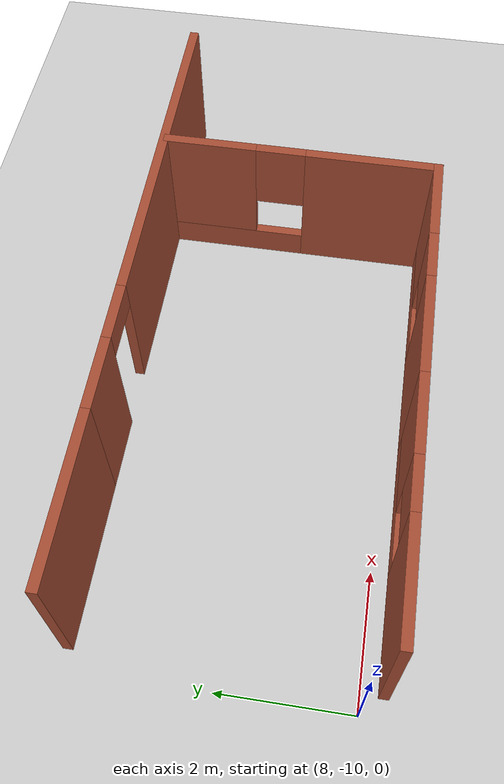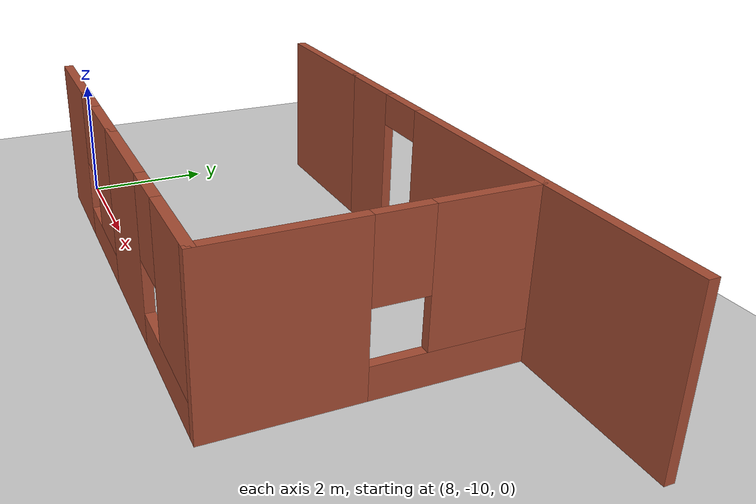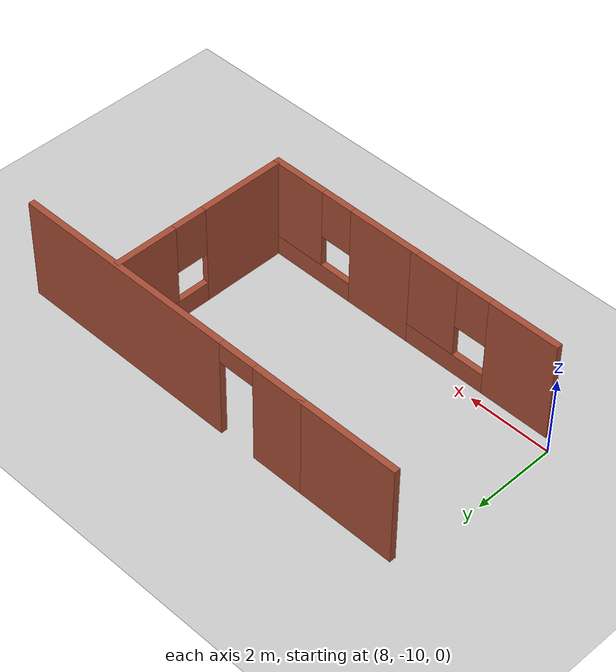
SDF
<sdf version="1.6">
 <world name="default">
  <model name="ground_plane">
   <static>1</static>
   <link name="link">
    <collision name="collision">
     <geometry><plane><normal>0 0 1</normal><size>100 100</size></plane></geometry>
     <surface>
      <contact><collide_bitmask>65535</collide_bitmask></contact>
      <friction><ode><mu>100</mu><mu2>50</mu2></ode></friction>
     </surface>
    </collision>
    <visual name="visual">
     <cast_shadows>0</cast_shadows>
     <geometry><plane><normal>0 0 1</normal><size>100 100</size></plane></geometry>
     <material>
      <script><uri>file://media/materials/scripts/gazebo.material</uri><name>Gazebo/Grey</name></script>
     </material>
    </visual>
   </link>
  </model>
  <model name="office">
   <pose>2.35048 -0.469027 0 0 -0 0</pose>
   <link name="Wall_41">
    <pose>12.1535 -5.4354 0 0 -0 3.14159</pose>
    <visual name="Wall_41_Visual_0">
     <pose>-1.08935 0 1.25 0 -0 0</pose>
     <geometry><box><size>5.5713 0.15 2.5</size></box></geometry>
     <material>
      <script><uri>file://media/materials/scripts/gazebo.material</uri><name>Gazebo/Bricks</name></script>
      <ambient>1 1 1 1</ambient>
     </material>
     <meta><layer>0</layer></meta>
    </visual>
    <collision name="Wall_41_Collision_0">
     <geometry><box><size>5.5713 0.15 2.5</size></box></geometry>
     <pose>-1.08935 0 1.25 0 -0 0</pose>
    </collision>
    <visual name="Wall_41_Visual_1">
     <pose>3.23565 0 1.25 0 -0 0</pose>
     <geometry><box><size>1.2787 0.15 2.5</size></box></geometry>
     <material>
      <script><uri>file://media/materials/scripts/gazebo.material</uri><name>Gazebo/Bricks</name></script>
      <ambient>1 1 1 1</ambient>
     </material>
     <meta><layer>0</layer></meta>
    </visual>
    <collision name="Wall_41_Collision_1">
     <geometry><box><size>1.2787 0.15 2.5</size></box></geometry>
     <pose>3.23565 0 1.25 0 -0 0</pose>
    </collision>
    <visual name="Wall_41_Visual_2">
     <pose>2.1463 0 2.25 0 -0 0</pose>
     <geometry><box><size>0.9 0.15 0.5</size></box></geometry>
     <material>
      <script><uri>file://media/materials/scripts/gazebo.material</uri><name>Gazebo/Bricks</name></script>
      <ambient>1 1 1 1</ambient>
     </material>
     <meta><layer>0</layer></meta>
    </visual>
    <collision name="Wall_41_Collision_2">
     <geometry><box><size>0.9 0.15 0.5</size></box></geometry>
     <pose>2.1463 0 2.25 0 -0 0</pose>
    </collision>
   </link>
   <link name="Wall_42">
    <collision name="Wall_42_Collision">
     <geometry><box><size>2.5 0.15 2.5</size></box></geometry>
     <pose>0 0 1.25 0 -0 0</pose>
    </collision>
    <visual name="Wall_42_Visual">
     <pose>0 0 1.25 0 -0 0</pose>
     <geometry><box><size>2.5 0.15 2.5</size></box></geometry>
     <material>
      <script><uri>file://media/materials/scripts/gazebo.material</uri><name>Gazebo/Bricks</name></script>
      <ambient>1 1 1 1</ambient>
     </material>
     <meta><layer>0</layer></meta>
    </visual>
    <pose>7.17848 -5.4354 0 0 -0 3.14159</pose>
   </link>
   <link name="Wall_44">
    <pose>7.79333 -9.85568 0 0 -0 2.5e-05</pose>
    <visual name="Wall_44_Visual_0">
     <pose>-1.02118 0 1.25 0 -0 0</pose>
     <geometry><box><size>1.70765 0.15 2.5</size></box></geometry>
     <material>
      <script><uri>file://media/materials/scripts/gazebo.material</uri><name>Gazebo/Bricks</name></script>
      <ambient>1 1 1 1</ambient>
     </material>
     <meta><layer>0</layer></meta>
    </visual>
    <collision name="Wall_44_Collision_0">
     <geometry><box><size>1.70765 0.15 2.5</size></box></geometry>
     <pose>-1.02118 0 1.25 0 -0 0</pose>
    </collision>
    <visual name="Wall_44_Visual_1">
     <pose>0.853823 0 0.25 0 -0 0</pose>
     <geometry><box><size>2.04235 0.15 0.5</size></box></geometry>
     <material>
      <script><uri>file://media/materials/scripts/gazebo.material</uri><name>Gazebo/Bricks</name></script>
      <ambient>1 1 1 1</ambient>
     </material>
     <meta><layer>0</layer></meta>
    </visual>
    <collision name="Wall_44_Collision_1">
     <geometry><box><size>2.04235 0.15 0.5</size></box></geometry>
     <pose>0.853823 0 0.25 0 -0 0</pose>
    </collision>
    <visual name="Wall_44_Visual_2">
     <pose>1.25382 0 1.5 0 -0 0</pose>
     <geometry><box><size>1.24235 0.15 2</size></box></geometry>
     <material>
      <script><uri>file://media/materials/scripts/gazebo.material</uri><name>Gazebo/Bricks</name></script>
      <ambient>1 1 1 1</ambient>
     </material>
     <meta><layer>0</layer></meta>
    </visual>
    <collision name="Wall_44_Collision_2">
     <geometry><box><size>1.24235 0.15 2</size></box></geometry>
     <pose>1.25382 0 1.5 0 -0 0</pose>
    </collision>
    <visual name="Wall_44_Visual_3">
     <pose>0.232647 0 1.9 0 -0 0</pose>
     <geometry><box><size>0.8 0.15 1.2</size></box></geometry>
     <material>
      <script><uri>file://media/materials/scripts/gazebo.material</uri><name>Gazebo/Bricks</name></script>
      <ambient>1 1 1 1</ambient>
     </material>
     <meta><layer>0</layer></meta>
    </visual>
    <collision name="Wall_44_Collision_3">
     <geometry><box><size>0.8 0.15 1.2</size></box></geometry>
     <pose>0.232647 0 1.9 0 -0 0</pose>
    </collision>
   </link>
   <link name="Wall_45">
    <pose>11.5181 -9.85564 0 0 -0 0</pose>
    <visual name="Wall_45_Visual_0">
     <pose>-1.1064 0 1.25 0 -0 0</pose>
     <geometry><box><size>1.78721 0.15 2.5</size></box></geometry>
     <material>
      <script><uri>file://media/materials/scripts/gazebo.material</uri><name>Gazebo/Bricks</name></script>
      <ambient>1 1 1 1</ambient>
     </material>
     <meta><layer>0</layer></meta>
    </visual>
    <collision name="Wall_45_Collision_0">
     <geometry><box><size>1.78721 0.15 2.5</size></box></geometry>
     <pose>-1.1064 0 1.25 0 -0 0</pose>
    </collision>
    <visual name="Wall_45_Visual_1">
     <pose>0.893603 0 0.25 0 -0 0</pose>
     <geometry><box><size>2.21279 0.15 0.5</size></box></geometry>
     <material>
      <script><uri>file://media/materials/scripts/gazebo.material</uri><name>Gazebo/Bricks</name></script>
      <ambient>1 1 1 1</ambient>
     </material>
     <meta><layer>0</layer></meta>
    </visual>
    <collision name="Wall_45_Collision_1">
     <geometry><box><size>2.21279 0.15 0.5</size></box></geometry>
     <pose>0.893603 0 0.25 0 -0 0</pose>
    </collision>
    <visual name="Wall_45_Visual_2">
     <pose>1.2936 0 1.5 0 -0 0</pose>
     <geometry><box><size>1.41279 0.15 2</size></box></geometry>
     <material>
      <script><uri>file://media/materials/scripts/gazebo.material</uri><name>Gazebo/Bricks</name></script>
      <ambient>1 1 1 1</ambient>
     </material>
     <meta><layer>0</layer></meta>
    </visual>
    <collision name="Wall_45_Collision_2">
     <geometry><box><size>1.41279 0.15 2</size></box></geometry>
     <pose>1.2936 0 1.5 0 -0 0</pose>
    </collision>
    <visual name="Wall_45_Visual_3">
     <pose>0.187206 0 1.9 0 -0 0</pose>
     <geometry><box><size>0.8 0.15 1.2</size></box></geometry>
     <material>
      <script><uri>file://media/materials/scripts/gazebo.material</uri><name>Gazebo/Bricks</name></script>
      <ambient>1 1 1 1</ambient>
     </material>
     <meta><layer>0</layer></meta>
    </visual>
    <collision name="Wall_45_Collision_3">
     <geometry><box><size>0.8 0.15 1.2</size></box></geometry>
     <pose>0.187206 0 1.9 0 -0 0</pose>
    </collision>
   </link>
   <link name="Wall_46">
    <pose>13.4431 -7.68064 0 0 -0 1.5708</pose>
    <visual name="Wall_46_Visual_0">
     <pose>-1.15703 0 1.25 0 -0 0</pose>
     <geometry><box><size>2.18594 0.15 2.5</size></box></geometry>
     <material>
      <script><uri>file://media/materials/scripts/gazebo.material</uri><name>Gazebo/Bricks</name></script>
      <ambient>1 1 1 1</ambient>
     </material>
     <meta><layer>0</layer></meta>
    </visual>
    <collision name="Wall_46_Collision_0">
     <geometry><box><size>2.18594 0.15 2.5</size></box></geometry>
     <pose>-1.15703 0 1.25 0 -0 0</pose>
    </collision>
    <visual name="Wall_46_Visual_1">
     <pose>1.09297 0 0.25 0 -0 0</pose>
     <geometry><box><size>2.31406 0.15 0.5</size></box></geometry>
     <material>
      <script><uri>file://media/materials/scripts/gazebo.material</uri><name>Gazebo/Bricks</name></script>
      <ambient>1 1 1 1</ambient>
     </material>
     <meta><layer>0</layer></meta>
    </visual>
    <collision name="Wall_46_Collision_1">
     <geometry><box><size>2.31406 0.15 0.5</size></box></geometry>
     <pose>1.09297 0 0.25 0 -0 0</pose>
    </collision>
    <visual name="Wall_46_Visual_2">
     <pose>1.49297 0 1.5 0 -0 0</pose>
     <geometry><box><size>1.51406 0.15 2</size></box></geometry>
     <material>
      <script><uri>file://media/materials/scripts/gazebo.material</uri><name>Gazebo/Bricks</name></script>
      <ambient>1 1 1 1</ambient>
     </material>
     <meta><layer>0</layer></meta>
    </visual>
    <collision name="Wall_46_Collision_2">
     <geometry><box><size>1.51406 0.15 2</size></box></geometry>
     <pose>1.49297 0 1.5 0 -0 0</pose>
    </collision>
    <visual name="Wall_46_Visual_3">
     <pose>0.335944 0 1.9 0 -0 0</pose>
     <geometry><box><size>0.8 0.15 1.2</size></box></geometry>
     <material>
      <script><uri>file://media/materials/scripts/gazebo.material</uri><name>Gazebo/Bricks</name></script>
      <ambient>1 1 1 1</ambient>
     </material>
     <meta><layer>0</layer></meta>
    </visual>
    <collision name="Wall_46_Collision_3">
     <geometry><box><size>0.8 0.15 1.2</size></box></geometry>
     <pose>0.335944 0 1.9 0 -0 0</pose>
    </collision>
   </link>
   <static>1</static>
  </model>
 </world>
</sdf>
